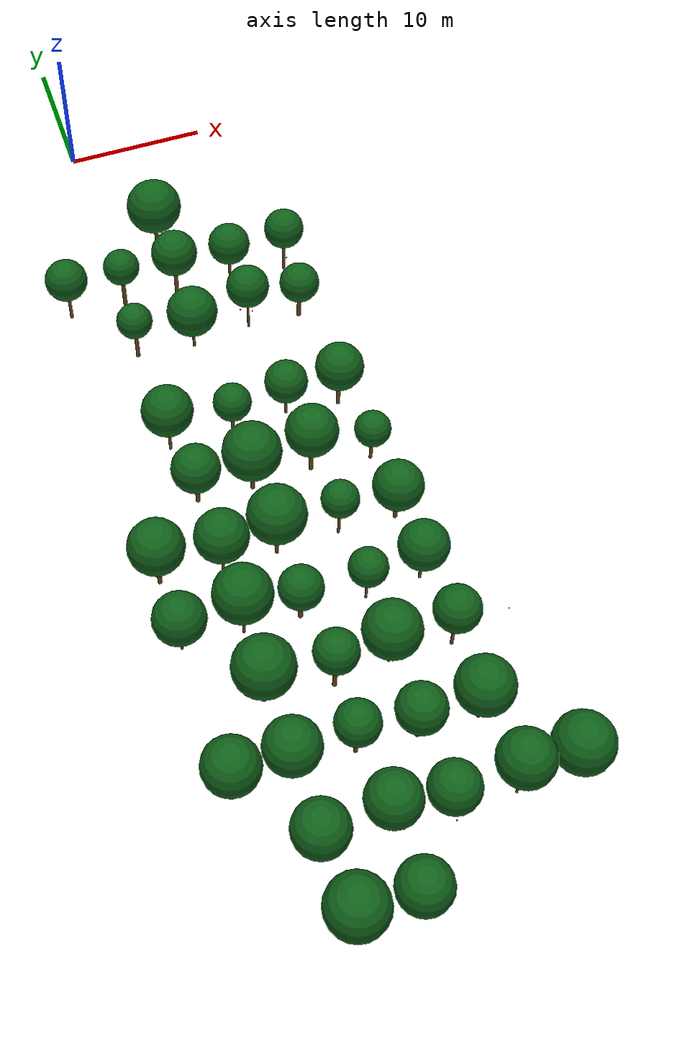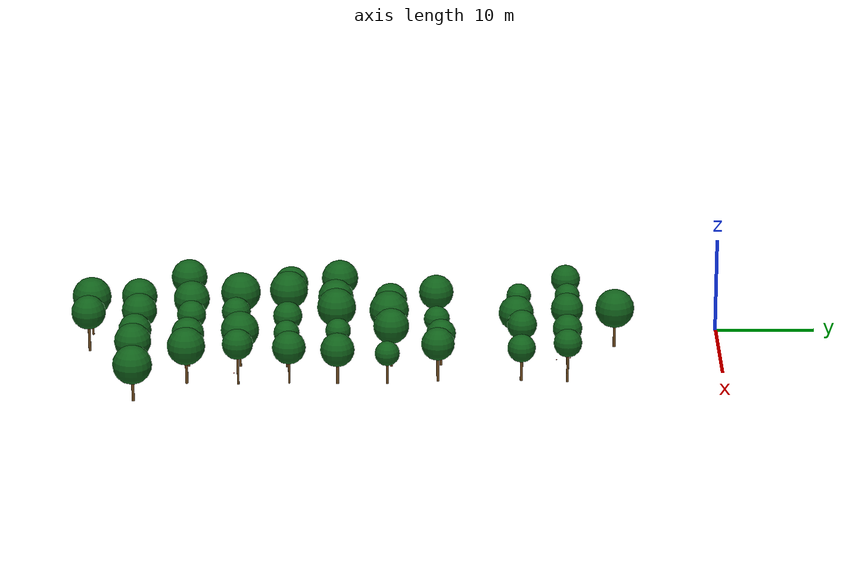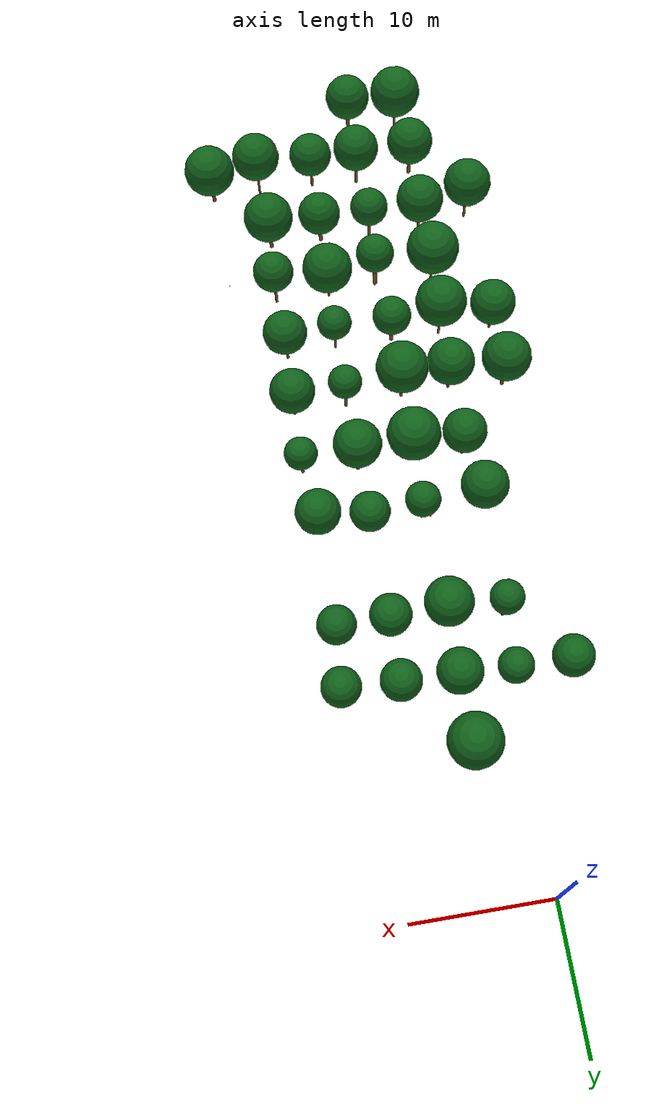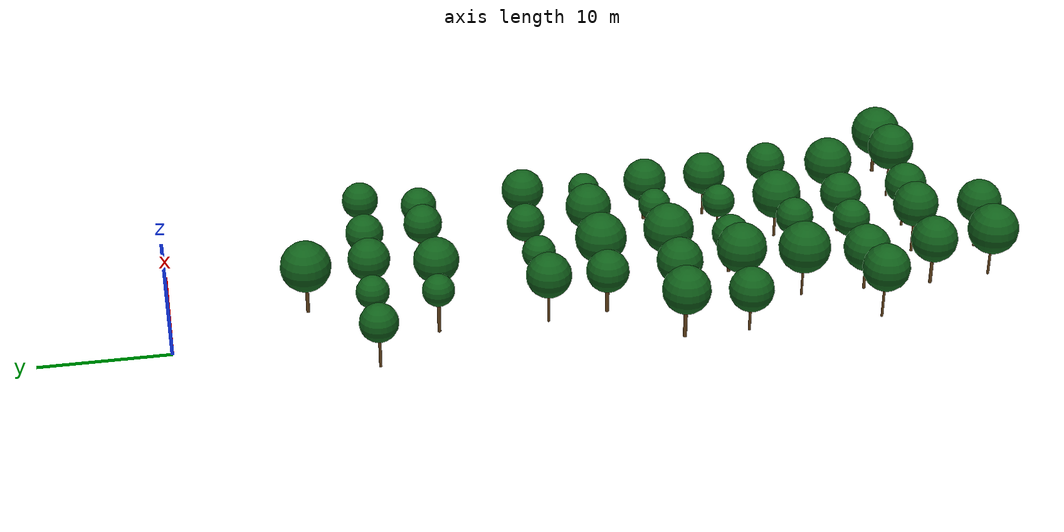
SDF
<sdf version="1.9">
 <world name="cheongsong_orchard">
  <model name="apple_tree_571">
   <static>true</static>
   <pose>0.04 -63.09 0 0 0 0</pose>
   <link name="link">
    <collision name="trunk_col">
     <pose>0 0 1.14 0 0 0</pose>
     <geometry><cylinder><radius>0.101</radius><length>2.27</length></cylinder></geometry>
    </collision>
    <visual name="trunk_vis">
     <pose>0 0 1.14 0 0 0</pose>
     <geometry><cylinder><radius>0.101</radius><length>2.27</length></cylinder></geometry>
     <material><ambient>0.35 0.22 0.08 1</ambient><diffuse>0.45 0.30 0.12 1</diffuse></material>
    </visual>
    <collision name="canopy_col">
     <pose>0 0 4.23 0 0 0</pose>
     <geometry><sphere><radius>1.96</radius></sphere></geometry>
    </collision>
    <visual name="canopy_vis">
     <pose>0 0 4.23 0 0 0</pose>
     <geometry><sphere><radius>1.96</radius></sphere></geometry>
     <material><ambient>0.04 0.28 0.06 1</ambient><diffuse>0.06 0.38 0.10 1</diffuse></material>
    </visual>
   </link>
  </model>
  <model name="apple_tree_572">
   <static>true</static>
   <pose>3.88 -63.20 0 0 0 0</pose>
   <link name="link">
    <collision name="trunk_col">
     <pose>0 0 1.25 0 0 0</pose>
     <geometry><cylinder><radius>0.133</radius><length>2.50</length></cylinder></geometry>
    </collision>
    <visual name="trunk_vis">
     <pose>0 0 1.25 0 0 0</pose>
     <geometry><cylinder><radius>0.133</radius><length>2.50</length></cylinder></geometry>
     <material><ambient>0.35 0.22 0.08 1</ambient><diffuse>0.45 0.30 0.12 1</diffuse></material>
    </visual>
    <collision name="canopy_col">
     <pose>0 0 4.22 0 0 0</pose>
     <geometry><sphere><radius>1.72</radius></sphere></geometry>
    </collision>
    <visual name="canopy_vis">
     <pose>0 0 4.22 0 0 0</pose>
     <geometry><sphere><radius>1.72</radius></sphere></geometry>
     <material><ambient>0.04 0.28 0.06 1</ambient><diffuse>0.06 0.38 0.10 1</diffuse></material>
    </visual>
   </link>
  </model>
  <model name="apple_tree_628">
   <static>true</static>
   <pose>-0.34 -58.31 0 0 0 0</pose>
   <link name="link">
    <collision name="trunk_col">
     <pose>0 0 1.14 0 0 0</pose>
     <geometry><cylinder><radius>0.129</radius><length>2.29</length></cylinder></geometry>
    </collision>
    <visual name="trunk_vis">
     <pose>0 0 1.14 0 0 0</pose>
     <geometry><cylinder><radius>0.129</radius><length>2.29</length></cylinder></geometry>
     <material><ambient>0.35 0.22 0.08 1</ambient><diffuse>0.45 0.30 0.12 1</diffuse></material>
    </visual>
    <collision name="canopy_col">
     <pose>0 0 4.07 0 0 0</pose>
     <geometry><sphere><radius>1.79</radius></sphere></geometry>
    </collision>
    <visual name="canopy_vis">
     <pose>0 0 4.07 0 0 0</pose>
     <geometry><sphere><radius>1.79</radius></sphere></geometry>
     <material><ambient>0.04 0.28 0.06 1</ambient><diffuse>0.06 0.38 0.10 1</diffuse></material>
    </visual>
   </link>
  </model>
  <model name="apple_tree_629">
   <static>true</static>
   <pose>4.02 -58.09 0 0 0 0</pose>
   <link name="link">
    <collision name="trunk_col">
     <pose>0 0 1.34 0 0 0</pose>
     <geometry><cylinder><radius>0.111</radius><length>2.68</length></cylinder></geometry>
    </collision>
    <visual name="trunk_vis">
     <pose>0 0 1.34 0 0 0</pose>
     <geometry><cylinder><radius>0.111</radius><length>2.68</length></cylinder></geometry>
     <material><ambient>0.35 0.22 0.08 1</ambient><diffuse>0.45 0.30 0.12 1</diffuse></material>
    </visual>
    <collision name="canopy_col">
     <pose>0 0 4.44 0 0 0</pose>
     <geometry><sphere><radius>1.76</radius></sphere></geometry>
    </collision>
    <visual name="canopy_vis">
     <pose>0 0 4.44 0 0 0</pose>
     <geometry><sphere><radius>1.76</radius></sphere></geometry>
     <material><ambient>0.04 0.28 0.06 1</ambient><diffuse>0.06 0.38 0.10 1</diffuse></material>
    </visual>
   </link>
  </model>
  <model name="apple_tree_630">
   <static>true</static>
   <pose>7.61 -58.36 0 0 0 0</pose>
   <link name="link">
    <collision name="trunk_col">
     <pose>0 0 1.17 0 0 0</pose>
     <geometry><cylinder><radius>0.104</radius><length>2.34</length></cylinder></geometry>
    </collision>
    <visual name="trunk_vis">
     <pose>0 0 1.17 0 0 0</pose>
     <geometry><cylinder><radius>0.104</radius><length>2.34</length></cylinder></geometry>
     <material><ambient>0.35 0.22 0.08 1</ambient><diffuse>0.45 0.30 0.12 1</diffuse></material>
    </visual>
    <collision name="canopy_col">
     <pose>0 0 3.98 0 0 0</pose>
     <geometry><sphere><radius>1.64</radius></sphere></geometry>
    </collision>
    <visual name="canopy_vis">
     <pose>0 0 3.98 0 0 0</pose>
     <geometry><sphere><radius>1.64</radius></sphere></geometry>
     <material><ambient>0.04 0.28 0.06 1</ambient><diffuse>0.06 0.38 0.10 1</diffuse></material>
    </visual>
   </link>
  </model>
  <model name="apple_tree_631">
   <static>true</static>
   <pose>11.90 -58.32 0 0 0 0</pose>
   <link name="link">
    <collision name="trunk_col">
     <pose>0 0 1.44 0 0 0</pose>
     <geometry><cylinder><radius>0.084</radius><length>2.89</length></cylinder></geometry>
    </collision>
    <visual name="trunk_vis">
     <pose>0 0 1.44 0 0 0</pose>
     <geometry><cylinder><radius>0.084</radius><length>2.89</length></cylinder></geometry>
     <material><ambient>0.35 0.22 0.08 1</ambient><diffuse>0.45 0.30 0.12 1</diffuse></material>
    </visual>
    <collision name="canopy_col">
     <pose>0 0 4.71 0 0 0</pose>
     <geometry><sphere><radius>1.82</radius></sphere></geometry>
    </collision>
    <visual name="canopy_vis">
     <pose>0 0 4.71 0 0 0</pose>
     <geometry><sphere><radius>1.82</radius></sphere></geometry>
     <material><ambient>0.04 0.28 0.06 1</ambient><diffuse>0.06 0.38 0.10 1</diffuse></material>
    </visual>
   </link>
  </model>
  <model name="apple_tree_632">
   <static>true</static>
   <pose>15.62 -58.19 0 0 0 0</pose>
   <link name="link">
    <collision name="trunk_col">
     <pose>0 0 0.98 0 0 0</pose>
     <geometry><cylinder><radius>0.140</radius><length>1.96</length></cylinder></geometry>
    </collision>
    <visual name="trunk_vis">
     <pose>0 0 0.98 0 0 0</pose>
     <geometry><cylinder><radius>0.140</radius><length>1.96</length></cylinder></geometry>
     <material><ambient>0.35 0.22 0.08 1</ambient><diffuse>0.45 0.30 0.12 1</diffuse></material>
    </visual>
    <collision name="canopy_col">
     <pose>0 0 3.91 0 0 0</pose>
     <geometry><sphere><radius>1.94</radius></sphere></geometry>
    </collision>
    <visual name="canopy_vis">
     <pose>0 0 3.91 0 0 0</pose>
     <geometry><sphere><radius>1.94</radius></sphere></geometry>
     <material><ambient>0.04 0.28 0.06 1</ambient><diffuse>0.06 0.38 0.10 1</diffuse></material>
    </visual>
   </link>
  </model>
  <model name="apple_tree_686">
   <static>true</static>
   <pose>-3.99 -53.42 0 0 0 0</pose>
   <link name="link">
    <collision name="trunk_col">
     <pose>0 0 1.35 0 0 0</pose>
     <geometry><cylinder><radius>0.097</radius><length>2.70</length></cylinder></geometry>
    </collision>
    <visual name="trunk_vis">
     <pose>0 0 1.35 0 0 0</pose>
     <geometry><cylinder><radius>0.097</radius><length>2.70</length></cylinder></geometry>
     <material><ambient>0.35 0.22 0.08 1</ambient><diffuse>0.45 0.30 0.12 1</diffuse></material>
    </visual>
    <collision name="canopy_col">
     <pose>0 0 4.52 0 0 0</pose>
     <geometry><sphere><radius>1.82</radius></sphere></geometry>
    </collision>
    <visual name="canopy_vis">
     <pose>0 0 4.52 0 0 0</pose>
     <geometry><sphere><radius>1.82</radius></sphere></geometry>
     <material><ambient>0.04 0.28 0.06 1</ambient><diffuse>0.06 0.38 0.10 1</diffuse></material>
    </visual>
   </link>
  </model>
  <model name="apple_tree_687">
   <static>true</static>
   <pose>-0.22 -53.05 0 0 0 0</pose>
   <link name="link">
    <collision name="trunk_col">
     <pose>0 0 0.99 0 0 0</pose>
     <geometry><cylinder><radius>0.112</radius><length>1.98</length></cylinder></geometry>
    </collision>
    <visual name="trunk_vis">
     <pose>0 0 0.99 0 0 0</pose>
     <geometry><cylinder><radius>0.112</radius><length>1.98</length></cylinder></geometry>
     <material><ambient>0.35 0.22 0.08 1</ambient><diffuse>0.45 0.30 0.12 1</diffuse></material>
    </visual>
    <collision name="canopy_col">
     <pose>0 0 3.80 0 0 0</pose>
     <geometry><sphere><radius>1.82</radius></sphere></geometry>
    </collision>
    <visual name="canopy_vis">
     <pose>0 0 3.80 0 0 0</pose>
     <geometry><sphere><radius>1.82</radius></sphere></geometry>
     <material><ambient>0.04 0.28 0.06 1</ambient><diffuse>0.06 0.38 0.10 1</diffuse></material>
    </visual>
   </link>
  </model>
  <model name="apple_tree_688">
   <static>true</static>
   <pose>3.82 -52.90 0 0 0 0</pose>
   <link name="link">
    <collision name="trunk_col">
     <pose>0 0 1.21 0 0 0</pose>
     <geometry><cylinder><radius>0.128</radius><length>2.41</length></cylinder></geometry>
    </collision>
    <visual name="trunk_vis">
     <pose>0 0 1.21 0 0 0</pose>
     <geometry><cylinder><radius>0.128</radius><length>2.41</length></cylinder></geometry>
     <material><ambient>0.35 0.22 0.08 1</ambient><diffuse>0.45 0.30 0.12 1</diffuse></material>
    </visual>
    <collision name="canopy_col">
     <pose>0 0 3.86 0 0 0</pose>
     <geometry><sphere><radius>1.45</radius></sphere></geometry>
    </collision>
    <visual name="canopy_vis">
     <pose>0 0 3.86 0 0 0</pose>
     <geometry><sphere><radius>1.45</radius></sphere></geometry>
     <material><ambient>0.04 0.28 0.06 1</ambient><diffuse>0.06 0.38 0.10 1</diffuse></material>
    </visual>
   </link>
  </model>
  <model name="apple_tree_689">
   <static>true</static>
   <pose>7.70 -53.11 0 0 0 0</pose>
   <link name="link">
    <collision name="trunk_col">
     <pose>0 0 1.00 0 0 0</pose>
     <geometry><cylinder><radius>0.146</radius><length>1.99</length></cylinder></geometry>
    </collision>
    <visual name="trunk_vis">
     <pose>0 0 1.00 0 0 0</pose>
     <geometry><cylinder><radius>0.146</radius><length>1.99</length></cylinder></geometry>
     <material><ambient>0.35 0.22 0.08 1</ambient><diffuse>0.45 0.30 0.12 1</diffuse></material>
    </visual>
    <collision name="canopy_col">
     <pose>0 0 3.61 0 0 0</pose>
     <geometry><sphere><radius>1.62</radius></sphere></geometry>
    </collision>
    <visual name="canopy_vis">
     <pose>0 0 3.61 0 0 0</pose>
     <geometry><sphere><radius>1.62</radius></sphere></geometry>
     <material><ambient>0.04 0.28 0.06 1</ambient><diffuse>0.06 0.38 0.10 1</diffuse></material>
    </visual>
   </link>
  </model>
  <model name="apple_tree_690">
   <static>true</static>
   <pose>11.66 -53.11 0 0 0 0</pose>
   <link name="link">
    <collision name="trunk_col">
     <pose>0 0 1.07 0 0 0</pose>
     <geometry><cylinder><radius>0.142</radius><length>2.14</length></cylinder></geometry>
    </collision>
    <visual name="trunk_vis">
     <pose>0 0 1.07 0 0 0</pose>
     <geometry><cylinder><radius>0.142</radius><length>2.14</length></cylinder></geometry>
     <material><ambient>0.35 0.22 0.08 1</ambient><diffuse>0.45 0.30 0.12 1</diffuse></material>
    </visual>
    <collision name="canopy_col">
     <pose>0 0 4.03 0 0 0</pose>
     <geometry><sphere><radius>1.89</radius></sphere></geometry>
    </collision>
    <visual name="canopy_vis">
     <pose>0 0 4.03 0 0 0</pose>
     <geometry><sphere><radius>1.89</radius></sphere></geometry>
     <material><ambient>0.04 0.28 0.06 1</ambient><diffuse>0.06 0.38 0.10 1</diffuse></material>
    </visual>
   </link>
  </model>
  <model name="apple_tree_746">
   <static>true</static>
   <pose>-0.30 -48.07 0 0 0 0</pose>
   <link name="link">
    <collision name="trunk_col">
     <pose>0 0 1.23 0 0 0</pose>
     <geometry><cylinder><radius>0.089</radius><length>2.46</length></cylinder></geometry>
    </collision>
    <visual name="trunk_vis">
     <pose>0 0 1.23 0 0 0</pose>
     <geometry><cylinder><radius>0.089</radius><length>2.46</length></cylinder></geometry>
     <material><ambient>0.35 0.22 0.08 1</ambient><diffuse>0.45 0.30 0.12 1</diffuse></material>
    </visual>
    <collision name="canopy_col">
     <pose>0 0 4.46 0 0 0</pose>
     <geometry><sphere><radius>2.00</radius></sphere></geometry>
    </collision>
    <visual name="canopy_vis">
     <pose>0 0 4.46 0 0 0</pose>
     <geometry><sphere><radius>2.00</radius></sphere></geometry>
     <material><ambient>0.04 0.28 0.06 1</ambient><diffuse>0.06 0.38 0.10 1</diffuse></material>
    </visual>
   </link>
  </model>
  <model name="apple_tree_747">
   <static>true</static>
   <pose>4.10 -48.40 0 0 0 0</pose>
   <link name="link">
    <collision name="trunk_col">
     <pose>0 0 1.43 0 0 0</pose>
     <geometry><cylinder><radius>0.144</radius><length>2.86</length></cylinder></geometry>
    </collision>
    <visual name="trunk_vis">
     <pose>0 0 1.43 0 0 0</pose>
     <geometry><cylinder><radius>0.144</radius><length>2.86</length></cylinder></geometry>
     <material><ambient>0.35 0.22 0.08 1</ambient><diffuse>0.45 0.30 0.12 1</diffuse></material>
    </visual>
    <collision name="canopy_col">
     <pose>0 0 4.31 0 0 0</pose>
     <geometry><sphere><radius>1.45</radius></sphere></geometry>
    </collision>
    <visual name="canopy_vis">
     <pose>0 0 4.31 0 0 0</pose>
     <geometry><sphere><radius>1.45</radius></sphere></geometry>
     <material><ambient>0.04 0.28 0.06 1</ambient><diffuse>0.06 0.38 0.10 1</diffuse></material>
    </visual>
   </link>
  </model>
  <model name="apple_tree_748">
   <static>true</static>
   <pose>7.84 -47.92 0 0 0 0</pose>
   <link name="link">
    <collision name="trunk_col">
     <pose>0 0 1.03 0 0 0</pose>
     <geometry><cylinder><radius>0.102</radius><length>2.07</length></cylinder></geometry>
    </collision>
    <visual name="trunk_vis">
     <pose>0 0 1.03 0 0 0</pose>
     <geometry><cylinder><radius>0.102</radius><length>2.07</length></cylinder></geometry>
     <material><ambient>0.35 0.22 0.08 1</ambient><diffuse>0.45 0.30 0.12 1</diffuse></material>
    </visual>
    <collision name="canopy_col">
     <pose>0 0 3.97 0 0 0</pose>
     <geometry><sphere><radius>1.90</radius></sphere></geometry>
    </collision>
    <visual name="canopy_vis">
     <pose>0 0 3.97 0 0 0</pose>
     <geometry><sphere><radius>1.90</radius></sphere></geometry>
     <material><ambient>0.04 0.28 0.06 1</ambient><diffuse>0.06 0.38 0.10 1</diffuse></material>
    </visual>
   </link>
  </model>
  <model name="apple_tree_749">
   <static>true</static>
   <pose>11.95 -48.03 0 0 0 0</pose>
   <link name="link">
    <collision name="trunk_col">
     <pose>0 0 1.40 0 0 0</pose>
     <geometry><cylinder><radius>0.109</radius><length>2.81</length></cylinder></geometry>
    </collision>
    <visual name="trunk_vis">
     <pose>0 0 1.40 0 0 0</pose>
     <geometry><cylinder><radius>0.109</radius><length>2.81</length></cylinder></geometry>
     <material><ambient>0.35 0.22 0.08 1</ambient><diffuse>0.45 0.30 0.12 1</diffuse></material>
    </visual>
    <collision name="canopy_col">
     <pose>0 0 4.34 0 0 0</pose>
     <geometry><sphere><radius>1.53</radius></sphere></geometry>
    </collision>
    <visual name="canopy_vis">
     <pose>0 0 4.34 0 0 0</pose>
     <geometry><sphere><radius>1.53</radius></sphere></geometry>
     <material><ambient>0.04 0.28 0.06 1</ambient><diffuse>0.06 0.38 0.10 1</diffuse></material>
    </visual>
   </link>
  </model>
  <model name="apple_tree_804">
   <static>true</static>
   <pose>-4.01 -43.07 0 0 0 0</pose>
   <link name="link">
    <collision name="trunk_col">
     <pose>0 0 1.02 0 0 0</pose>
     <geometry><cylinder><radius>0.102</radius><length>2.04</length></cylinder></geometry>
    </collision>
    <visual name="trunk_vis">
     <pose>0 0 1.02 0 0 0</pose>
     <geometry><cylinder><radius>0.102</radius><length>2.04</length></cylinder></geometry>
     <material><ambient>0.35 0.22 0.08 1</ambient><diffuse>0.45 0.30 0.12 1</diffuse></material>
    </visual>
    <collision name="canopy_col">
     <pose>0 0 3.76 0 0 0</pose>
     <geometry><sphere><radius>1.72</radius></sphere></geometry>
    </collision>
    <visual name="canopy_vis">
     <pose>0 0 3.76 0 0 0</pose>
     <geometry><sphere><radius>1.72</radius></sphere></geometry>
     <material><ambient>0.04 0.28 0.06 1</ambient><diffuse>0.06 0.38 0.10 1</diffuse></material>
    </visual>
   </link>
  </model>
  <model name="apple_tree_805">
   <static>true</static>
   <pose>-0.03 -43.21 0 0 0 0</pose>
   <link name="link">
    <collision name="trunk_col">
     <pose>0 0 1.44 0 0 0</pose>
     <geometry><cylinder><radius>0.090</radius><length>2.87</length></cylinder></geometry>
    </collision>
    <visual name="trunk_vis">
     <pose>0 0 1.44 0 0 0</pose>
     <geometry><cylinder><radius>0.090</radius><length>2.87</length></cylinder></geometry>
     <material><ambient>0.35 0.22 0.08 1</ambient><diffuse>0.45 0.30 0.12 1</diffuse></material>
    </visual>
    <collision name="canopy_col">
     <pose>0 0 4.79 0 0 0</pose>
     <geometry><sphere><radius>1.92</radius></sphere></geometry>
    </collision>
    <visual name="canopy_vis">
     <pose>0 0 4.79 0 0 0</pose>
     <geometry><sphere><radius>1.92</radius></sphere></geometry>
     <material><ambient>0.04 0.28 0.06 1</ambient><diffuse>0.06 0.38 0.10 1</diffuse></material>
    </visual>
   </link>
  </model>
  <model name="apple_tree_806">
   <static>true</static>
   <pose>3.67 -43.27 0 0 0 0</pose>
   <link name="link">
    <collision name="trunk_col">
     <pose>0 0 1.06 0 0 0</pose>
     <geometry><cylinder><radius>0.144</radius><length>2.13</length></cylinder></geometry>
    </collision>
    <visual name="trunk_vis">
     <pose>0 0 1.06 0 0 0</pose>
     <geometry><cylinder><radius>0.144</radius><length>2.13</length></cylinder></geometry>
     <material><ambient>0.35 0.22 0.08 1</ambient><diffuse>0.45 0.30 0.12 1</diffuse></material>
    </visual>
    <collision name="canopy_col">
     <pose>0 0 3.59 0 0 0</pose>
     <geometry><sphere><radius>1.46</radius></sphere></geometry>
    </collision>
    <visual name="canopy_vis">
     <pose>0 0 3.59 0 0 0</pose>
     <geometry><sphere><radius>1.46</radius></sphere></geometry>
     <material><ambient>0.04 0.28 0.06 1</ambient><diffuse>0.06 0.38 0.10 1</diffuse></material>
    </visual>
   </link>
  </model>
  <model name="apple_tree_807">
   <static>true</static>
   <pose>8.03 -43.29 0 0 0 0</pose>
   <link name="link">
    <collision name="trunk_col">
     <pose>0 0 1.21 0 0 0</pose>
     <geometry><cylinder><radius>0.085</radius><length>2.43</length></cylinder></geometry>
    </collision>
    <visual name="trunk_vis">
     <pose>0 0 1.21 0 0 0</pose>
     <geometry><cylinder><radius>0.085</radius><length>2.43</length></cylinder></geometry>
     <material><ambient>0.35 0.22 0.08 1</ambient><diffuse>0.45 0.30 0.12 1</diffuse></material>
    </visual>
    <collision name="canopy_col">
     <pose>0 0 3.72 0 0 0</pose>
     <geometry><sphere><radius>1.29</radius></sphere></geometry>
    </collision>
    <visual name="canopy_vis">
     <pose>0 0 3.72 0 0 0</pose>
     <geometry><sphere><radius>1.29</radius></sphere></geometry>
     <material><ambient>0.04 0.28 0.06 1</ambient><diffuse>0.06 0.38 0.10 1</diffuse></material>
    </visual>
   </link>
  </model>
  <model name="apple_tree_808">
   <static>true</static>
   <pose>11.80 -42.98 0 0 0 0</pose>
   <link name="link">
    <collision name="trunk_col">
     <pose>0 0 1.11 0 0 0</pose>
     <geometry><cylinder><radius>0.104</radius><length>2.23</length></cylinder></geometry>
    </collision>
    <visual name="trunk_vis">
     <pose>0 0 1.11 0 0 0</pose>
     <geometry><cylinder><radius>0.104</radius><length>2.23</length></cylinder></geometry>
     <material><ambient>0.35 0.22 0.08 1</ambient><diffuse>0.45 0.30 0.12 1</diffuse></material>
    </visual>
    <collision name="canopy_col">
     <pose>0 0 3.88 0 0 0</pose>
     <geometry><sphere><radius>1.66</radius></sphere></geometry>
    </collision>
    <visual name="canopy_vis">
     <pose>0 0 3.88 0 0 0</pose>
     <geometry><sphere><radius>1.66</radius></sphere></geometry>
     <material><ambient>0.04 0.28 0.06 1</ambient><diffuse>0.06 0.38 0.10 1</diffuse></material>
    </visual>
   </link>
  </model>
  <model name="apple_tree_863">
   <static>true</static>
   <pose>-4.01 -38.10 0 0 0 0</pose>
   <link name="link">
    <collision name="trunk_col">
     <pose>0 0 1.22 0 0 0</pose>
     <geometry><cylinder><radius>0.148</radius><length>2.44</length></cylinder></geometry>
    </collision>
    <visual name="trunk_vis">
     <pose>0 0 1.22 0 0 0</pose>
     <geometry><cylinder><radius>0.148</radius><length>2.44</length></cylinder></geometry>
     <material><ambient>0.35 0.22 0.08 1</ambient><diffuse>0.45 0.30 0.12 1</diffuse></material>
    </visual>
    <collision name="canopy_col">
     <pose>0 0 4.29 0 0 0</pose>
     <geometry><sphere><radius>1.85</radius></sphere></geometry>
    </collision>
    <visual name="canopy_vis">
     <pose>0 0 4.29 0 0 0</pose>
     <geometry><sphere><radius>1.85</radius></sphere></geometry>
     <material><ambient>0.04 0.28 0.06 1</ambient><diffuse>0.06 0.38 0.10 1</diffuse></material>
    </visual>
   </link>
  </model>
  <model name="apple_tree_864">
   <static>true</static>
   <pose>0.09 -38.48 0 0 0 0</pose>
   <link name="link">
    <collision name="trunk_col">
     <pose>0 0 1.14 0 0 0</pose>
     <geometry><cylinder><radius>0.104</radius><length>2.28</length></cylinder></geometry>
    </collision>
    <visual name="trunk_vis">
     <pose>0 0 1.14 0 0 0</pose>
     <geometry><cylinder><radius>0.104</radius><length>2.28</length></cylinder></geometry>
     <material><ambient>0.35 0.22 0.08 1</ambient><diffuse>0.45 0.30 0.12 1</diffuse></material>
    </visual>
    <collision name="canopy_col">
     <pose>0 0 4.06 0 0 0</pose>
     <geometry><sphere><radius>1.78</radius></sphere></geometry>
    </collision>
    <visual name="canopy_vis">
     <pose>0 0 4.06 0 0 0</pose>
     <geometry><sphere><radius>1.78</radius></sphere></geometry>
     <material><ambient>0.04 0.28 0.06 1</ambient><diffuse>0.06 0.38 0.10 1</diffuse></material>
    </visual>
   </link>
  </model>
  <model name="apple_tree_865">
   <static>true</static>
   <pose>3.75 -38.36 0 0 0 0</pose>
   <link name="link">
    <collision name="trunk_col">
     <pose>0 0 1.29 0 0 0</pose>
     <geometry><cylinder><radius>0.117</radius><length>2.59</length></cylinder></geometry>
    </collision>
    <visual name="trunk_vis">
     <pose>0 0 1.29 0 0 0</pose>
     <geometry><cylinder><radius>0.117</radius><length>2.59</length></cylinder></geometry>
     <material><ambient>0.35 0.22 0.08 1</ambient><diffuse>0.45 0.30 0.12 1</diffuse></material>
    </visual>
    <collision name="canopy_col">
     <pose>0 0 4.54 0 0 0</pose>
     <geometry><sphere><radius>1.95</radius></sphere></geometry>
    </collision>
    <visual name="canopy_vis">
     <pose>0 0 4.54 0 0 0</pose>
     <geometry><sphere><radius>1.95</radius></sphere></geometry>
     <material><ambient>0.04 0.28 0.06 1</ambient><diffuse>0.06 0.38 0.10 1</diffuse></material>
    </visual>
   </link>
  </model>
  <model name="apple_tree_866">
   <static>true</static>
   <pose>8.03 -38.17 0 0 0 0</pose>
   <link name="link">
    <collision name="trunk_col">
     <pose>0 0 1.34 0 0 0</pose>
     <geometry><cylinder><radius>0.096</radius><length>2.67</length></cylinder></geometry>
    </collision>
    <visual name="trunk_vis">
     <pose>0 0 1.34 0 0 0</pose>
     <geometry><cylinder><radius>0.096</radius><length>2.67</length></cylinder></geometry>
     <material><ambient>0.35 0.22 0.08 1</ambient><diffuse>0.45 0.30 0.12 1</diffuse></material>
    </visual>
    <collision name="canopy_col">
     <pose>0 0 3.93 0 0 0</pose>
     <geometry><sphere><radius>1.26</radius></sphere></geometry>
    </collision>
    <visual name="canopy_vis">
     <pose>0 0 3.93 0 0 0</pose>
     <geometry><sphere><radius>1.26</radius></sphere></geometry>
     <material><ambient>0.04 0.28 0.06 1</ambient><diffuse>0.06 0.38 0.10 1</diffuse></material>
    </visual>
   </link>
  </model>
  <model name="apple_tree_867">
   <static>true</static>
   <pose>11.95 -38.20 0 0 0 0</pose>
   <link name="link">
    <collision name="trunk_col">
     <pose>0 0 0.98 0 0 0</pose>
     <geometry><cylinder><radius>0.144</radius><length>1.97</length></cylinder></geometry>
    </collision>
    <visual name="trunk_vis">
     <pose>0 0 0.98 0 0 0</pose>
     <geometry><cylinder><radius>0.144</radius><length>1.97</length></cylinder></geometry>
     <material><ambient>0.35 0.22 0.08 1</ambient><diffuse>0.45 0.30 0.12 1</diffuse></material>
    </visual>
    <collision name="canopy_col">
     <pose>0 0 3.66 0 0 0</pose>
     <geometry><sphere><radius>1.69</radius></sphere></geometry>
    </collision>
    <visual name="canopy_vis">
     <pose>0 0 3.66 0 0 0</pose>
     <geometry><sphere><radius>1.69</radius></sphere></geometry>
     <material><ambient>0.04 0.28 0.06 1</ambient><diffuse>0.06 0.38 0.10 1</diffuse></material>
    </visual>
   </link>
  </model>
  <model name="apple_tree_916">
   <static>true</static>
   <pose>0.08 -32.93 0 0 0 0</pose>
   <link name="link">
    <collision name="trunk_col">
     <pose>0 0 1.05 0 0 0</pose>
     <geometry><cylinder><radius>0.148</radius><length>2.10</length></cylinder></geometry>
    </collision>
    <visual name="trunk_vis">
     <pose>0 0 1.05 0 0 0</pose>
     <geometry><cylinder><radius>0.148</radius><length>2.10</length></cylinder></geometry>
     <material><ambient>0.35 0.22 0.08 1</ambient><diffuse>0.45 0.30 0.12 1</diffuse></material>
    </visual>
    <collision name="canopy_col">
     <pose>0 0 3.74 0 0 0</pose>
     <geometry><sphere><radius>1.64</radius></sphere></geometry>
    </collision>
    <visual name="canopy_vis">
     <pose>0 0 3.74 0 0 0</pose>
     <geometry><sphere><radius>1.64</radius></sphere></geometry>
     <material><ambient>0.04 0.28 0.06 1</ambient><diffuse>0.06 0.38 0.10 1</diffuse></material>
    </visual>
   </link>
  </model>
  <model name="apple_tree_917">
   <static>true</static>
   <pose>3.81 -33.10 0 0 0 0</pose>
   <link name="link">
    <collision name="trunk_col">
     <pose>0 0 1.12 0 0 0</pose>
     <geometry><cylinder><radius>0.143</radius><length>2.24</length></cylinder></geometry>
    </collision>
    <visual name="trunk_vis">
     <pose>0 0 1.12 0 0 0</pose>
     <geometry><cylinder><radius>0.143</radius><length>2.24</length></cylinder></geometry>
     <material><ambient>0.35 0.22 0.08 1</ambient><diffuse>0.45 0.30 0.12 1</diffuse></material>
    </visual>
    <collision name="canopy_col">
     <pose>0 0 4.21 0 0 0</pose>
     <geometry><sphere><radius>1.98</radius></sphere></geometry>
    </collision>
    <visual name="canopy_vis">
     <pose>0 0 4.21 0 0 0</pose>
     <geometry><sphere><radius>1.98</radius></sphere></geometry>
     <material><ambient>0.04 0.28 0.06 1</ambient><diffuse>0.06 0.38 0.10 1</diffuse></material>
    </visual>
   </link>
  </model>
  <model name="apple_tree_918">
   <static>true</static>
   <pose>7.96 -32.89 0 0 0 0</pose>
   <link name="link">
    <collision name="trunk_col">
     <pose>0 0 1.30 0 0 0</pose>
     <geometry><cylinder><radius>0.136</radius><length>2.60</length></cylinder></geometry>
    </collision>
    <visual name="trunk_vis">
     <pose>0 0 1.30 0 0 0</pose>
     <geometry><cylinder><radius>0.136</radius><length>2.60</length></cylinder></geometry>
     <material><ambient>0.35 0.22 0.08 1</ambient><diffuse>0.45 0.30 0.12 1</diffuse></material>
    </visual>
    <collision name="canopy_col">
     <pose>0 0 4.38 0 0 0</pose>
     <geometry><sphere><radius>1.78</radius></sphere></geometry>
    </collision>
    <visual name="canopy_vis">
     <pose>0 0 4.38 0 0 0</pose>
     <geometry><sphere><radius>1.78</radius></sphere></geometry>
     <material><ambient>0.04 0.28 0.06 1</ambient><diffuse>0.06 0.38 0.10 1</diffuse></material>
    </visual>
   </link>
  </model>
  <model name="apple_tree_919">
   <static>true</static>
   <pose>12.06 -33.29 0 0 0 0</pose>
   <link name="link">
    <collision name="trunk_col">
     <pose>0 0 1.03 0 0 0</pose>
     <geometry><cylinder><radius>0.114</radius><length>2.06</length></cylinder></geometry>
    </collision>
    <visual name="trunk_vis">
     <pose>0 0 1.03 0 0 0</pose>
     <geometry><cylinder><radius>0.114</radius><length>2.06</length></cylinder></geometry>
     <material><ambient>0.35 0.22 0.08 1</ambient><diffuse>0.45 0.30 0.12 1</diffuse></material>
    </visual>
    <collision name="canopy_col">
     <pose>0 0 3.29 0 0 0</pose>
     <geometry><sphere><radius>1.23</radius></sphere></geometry>
    </collision>
    <visual name="canopy_vis">
     <pose>0 0 3.29 0 0 0</pose>
     <geometry><sphere><radius>1.23</radius></sphere></geometry>
     <material><ambient>0.04 0.28 0.06 1</ambient><diffuse>0.06 0.38 0.10 1</diffuse></material>
    </visual>
   </link>
  </model>
  <model name="apple_tree_969">
   <static>true</static>
   <pose>-0.46 -28.33 0 0 0 0</pose>
   <link name="link">
    <collision name="trunk_col">
     <pose>0 0 1.26 0 0 0</pose>
     <geometry><cylinder><radius>0.106</radius><length>2.53</length></cylinder></geometry>
    </collision>
    <visual name="trunk_vis">
     <pose>0 0 1.26 0 0 0</pose>
     <geometry><cylinder><radius>0.106</radius><length>2.53</length></cylinder></geometry>
     <material><ambient>0.35 0.22 0.08 1</ambient><diffuse>0.45 0.30 0.12 1</diffuse></material>
    </visual>
    <collision name="canopy_col">
     <pose>0 0 4.27 0 0 0</pose>
     <geometry><sphere><radius>1.74</radius></sphere></geometry>
    </collision>
    <visual name="canopy_vis">
     <pose>0 0 4.27 0 0 0</pose>
     <geometry><sphere><radius>1.74</radius></sphere></geometry>
     <material><ambient>0.04 0.28 0.06 1</ambient><diffuse>0.06 0.38 0.10 1</diffuse></material>
    </visual>
   </link>
  </model>
  <model name="apple_tree_970">
   <static>true</static>
   <pose>3.97 -28.32 0 0 0 0</pose>
   <link name="link">
    <collision name="trunk_col">
     <pose>0 0 1.00 0 0 0</pose>
     <geometry><cylinder><radius>0.121</radius><length>2.01</length></cylinder></geometry>
    </collision>
    <visual name="trunk_vis">
     <pose>0 0 1.00 0 0 0</pose>
     <geometry><cylinder><radius>0.121</radius><length>2.01</length></cylinder></geometry>
     <material><ambient>0.35 0.22 0.08 1</ambient><diffuse>0.45 0.30 0.12 1</diffuse></material>
    </visual>
    <collision name="canopy_col">
     <pose>0 0 3.31 0 0 0</pose>
     <geometry><sphere><radius>1.30</radius></sphere></geometry>
    </collision>
    <visual name="canopy_vis">
     <pose>0 0 3.31 0 0 0</pose>
     <geometry><sphere><radius>1.30</radius></sphere></geometry>
     <material><ambient>0.04 0.28 0.06 1</ambient><diffuse>0.06 0.38 0.10 1</diffuse></material>
    </visual>
   </link>
  </model>
  <model name="apple_tree_971">
   <static>true</static>
   <pose>7.87 -27.94 0 0 0 0</pose>
   <link name="link">
    <collision name="trunk_col">
     <pose>0 0 1.01 0 0 0</pose>
     <geometry><cylinder><radius>0.101</radius><length>2.01</length></cylinder></geometry>
    </collision>
    <visual name="trunk_vis">
     <pose>0 0 1.01 0 0 0</pose>
     <geometry><cylinder><radius>0.101</radius><length>2.01</length></cylinder></geometry>
     <material><ambient>0.35 0.22 0.08 1</ambient><diffuse>0.45 0.30 0.12 1</diffuse></material>
    </visual>
    <collision name="canopy_col">
     <pose>0 0 3.48 0 0 0</pose>
     <geometry><sphere><radius>1.47</radius></sphere></geometry>
    </collision>
    <visual name="canopy_vis">
     <pose>0 0 3.48 0 0 0</pose>
     <geometry><sphere><radius>1.47</radius></sphere></geometry>
     <material><ambient>0.04 0.28 0.06 1</ambient><diffuse>0.06 0.38 0.10 1</diffuse></material>
    </visual>
   </link>
  </model>
  <model name="apple_tree_972">
   <static>true</static>
   <pose>11.52 -28.29 0 0 0 0</pose>
   <link name="link">
    <collision name="trunk_col">
     <pose>0 0 1.20 0 0 0</pose>
     <geometry><cylinder><radius>0.140</radius><length>2.40</length></cylinder></geometry>
    </collision>
    <visual name="trunk_vis">
     <pose>0 0 1.20 0 0 0</pose>
     <geometry><cylinder><radius>0.140</radius><length>2.40</length></cylinder></geometry>
     <material><ambient>0.35 0.22 0.08 1</ambient><diffuse>0.45 0.30 0.12 1</diffuse></material>
    </visual>
    <collision name="canopy_col">
     <pose>0 0 4.05 0 0 0</pose>
     <geometry><sphere><radius>1.65</radius></sphere></geometry>
    </collision>
    <visual name="canopy_vis">
     <pose>0 0 4.05 0 0 0</pose>
     <geometry><sphere><radius>1.65</radius></sphere></geometry>
     <material><ambient>0.04 0.28 0.06 1</ambient><diffuse>0.06 0.38 0.10 1</diffuse></material>
    </visual>
   </link>
  </model>
  <model name="apple_tree_1028">
   <static>true</static>
   <pose>-0.40 -19.98 0 0 0 0</pose>
   <link name="link">
    <collision name="trunk_col">
     <pose>0 0 1.30 0 0 0</pose>
     <geometry><cylinder><radius>0.136</radius><length>2.59</length></cylinder></geometry>
    </collision>
    <visual name="trunk_vis">
     <pose>0 0 1.30 0 0 0</pose>
     <geometry><cylinder><radius>0.136</radius><length>2.59</length></cylinder></geometry>
     <material><ambient>0.35 0.22 0.08 1</ambient><diffuse>0.45 0.30 0.12 1</diffuse></material>
    </visual>
    <collision name="canopy_col">
     <pose>0 0 3.83 0 0 0</pose>
     <geometry><sphere><radius>1.24</radius></sphere></geometry>
    </collision>
    <visual name="canopy_vis">
     <pose>0 0 3.83 0 0 0</pose>
     <geometry><sphere><radius>1.24</radius></sphere></geometry>
     <material><ambient>0.04 0.28 0.06 1</ambient><diffuse>0.06 0.38 0.10 1</diffuse></material>
    </visual>
   </link>
  </model>
  <model name="apple_tree_1029">
   <static>true</static>
   <pose>3.60 -20.35 0 0 0 0</pose>
   <link name="link">
    <collision name="trunk_col">
     <pose>0 0 0.99 0 0 0</pose>
     <geometry><cylinder><radius>0.098</radius><length>1.98</length></cylinder></geometry>
    </collision>
    <visual name="trunk_vis">
     <pose>0 0 0.99 0 0 0</pose>
     <geometry><cylinder><radius>0.098</radius><length>1.98</length></cylinder></geometry>
     <material><ambient>0.35 0.22 0.08 1</ambient><diffuse>0.45 0.30 0.12 1</diffuse></material>
    </visual>
    <collision name="canopy_col">
     <pose>0 0 3.75 0 0 0</pose>
     <geometry><sphere><radius>1.76</radius></sphere></geometry>
    </collision>
    <visual name="canopy_vis">
     <pose>0 0 3.75 0 0 0</pose>
     <geometry><sphere><radius>1.76</radius></sphere></geometry>
     <material><ambient>0.04 0.28 0.06 1</ambient><diffuse>0.06 0.38 0.10 1</diffuse></material>
    </visual>
   </link>
  </model>
  <model name="apple_tree_1030">
   <static>true</static>
   <pose>7.77 -19.89 0 0 0 0</pose>
   <link name="link">
    <collision name="trunk_col">
     <pose>0 0 1.43 0 0 0</pose>
     <geometry><cylinder><radius>0.083</radius><length>2.85</length></cylinder></geometry>
    </collision>
    <visual name="trunk_vis">
     <pose>0 0 1.43 0 0 0</pose>
     <geometry><cylinder><radius>0.083</radius><length>2.85</length></cylinder></geometry>
     <material><ambient>0.35 0.22 0.08 1</ambient><diffuse>0.45 0.30 0.12 1</diffuse></material>
    </visual>
    <collision name="canopy_col">
     <pose>0 0 4.34 0 0 0</pose>
     <geometry><sphere><radius>1.49</radius></sphere></geometry>
    </collision>
    <visual name="canopy_vis">
     <pose>0 0 4.34 0 0 0</pose>
     <geometry><sphere><radius>1.49</radius></sphere></geometry>
     <material><ambient>0.04 0.28 0.06 1</ambient><diffuse>0.06 0.38 0.10 1</diffuse></material>
    </visual>
   </link>
  </model>
  <model name="apple_tree_1031">
   <static>true</static>
   <pose>11.51 -20.03 0 0 0 0</pose>
   <link name="link">
    <collision name="trunk_col">
     <pose>0 0 1.06 0 0 0</pose>
     <geometry><cylinder><radius>0.144</radius><length>2.13</length></cylinder></geometry>
    </collision>
    <visual name="trunk_vis">
     <pose>0 0 1.06 0 0 0</pose>
     <geometry><cylinder><radius>0.144</radius><length>2.13</length></cylinder></geometry>
     <material><ambient>0.35 0.22 0.08 1</ambient><diffuse>0.45 0.30 0.12 1</diffuse></material>
    </visual>
    <collision name="canopy_col">
     <pose>0 0 3.52 0 0 0</pose>
     <geometry><sphere><radius>1.40</radius></sphere></geometry>
    </collision>
    <visual name="canopy_vis">
     <pose>0 0 3.52 0 0 0</pose>
     <geometry><sphere><radius>1.40</radius></sphere></geometry>
     <material><ambient>0.04 0.28 0.06 1</ambient><diffuse>0.06 0.38 0.10 1</diffuse></material>
    </visual>
   </link>
  </model>
  <model name="apple_tree_1086">
   <static>true</static>
   <pose>-3.96 -15.11 0 0 0 0</pose>
   <link name="link">
    <collision name="trunk_col">
     <pose>0 0 1.28 0 0 0</pose>
     <geometry><cylinder><radius>0.111</radius><length>2.55</length></cylinder></geometry>
    </collision>
    <visual name="trunk_vis">
     <pose>0 0 1.28 0 0 0</pose>
     <geometry><cylinder><radius>0.111</radius><length>2.55</length></cylinder></geometry>
     <material><ambient>0.35 0.22 0.08 1</ambient><diffuse>0.45 0.30 0.12 1</diffuse></material>
    </visual>
    <collision name="canopy_col">
     <pose>0 0 4.03 0 0 0</pose>
     <geometry><sphere><radius>1.48</radius></sphere></geometry>
    </collision>
    <visual name="canopy_vis">
     <pose>0 0 4.03 0 0 0</pose>
     <geometry><sphere><radius>1.48</radius></sphere></geometry>
     <material><ambient>0.04 0.28 0.06 1</ambient><diffuse>0.06 0.38 0.10 1</diffuse></material>
    </visual>
   </link>
  </model>
  <model name="apple_tree_1087">
   <static>true</static>
   <pose>-0.00 -15.10 0 0 0 0</pose>
   <link name="link">
    <collision name="trunk_col">
     <pose>0 0 1.35 0 0 0</pose>
     <geometry><cylinder><radius>0.142</radius><length>2.71</length></cylinder></geometry>
    </collision>
    <visual name="trunk_vis">
     <pose>0 0 1.35 0 0 0</pose>
     <geometry><cylinder><radius>0.142</radius><length>2.71</length></cylinder></geometry>
     <material><ambient>0.35 0.22 0.08 1</ambient><diffuse>0.45 0.30 0.12 1</diffuse></material>
    </visual>
    <collision name="canopy_col">
     <pose>0 0 3.97 0 0 0</pose>
     <geometry><sphere><radius>1.27</radius></sphere></geometry>
    </collision>
    <visual name="canopy_vis">
     <pose>0 0 3.97 0 0 0</pose>
     <geometry><sphere><radius>1.27</radius></sphere></geometry>
     <material><ambient>0.04 0.28 0.06 1</ambient><diffuse>0.06 0.38 0.10 1</diffuse></material>
    </visual>
   </link>
  </model>
  <model name="apple_tree_1088">
   <static>true</static>
   <pose>3.83 -15.26 0 0 0 0</pose>
   <link name="link">
    <collision name="trunk_col">
     <pose>0 0 1.33 0 0 0</pose>
     <geometry><cylinder><radius>0.142</radius><length>2.65</length></cylinder></geometry>
    </collision>
    <visual name="trunk_vis">
     <pose>0 0 1.33 0 0 0</pose>
     <geometry><cylinder><radius>0.142</radius><length>2.65</length></cylinder></geometry>
     <material><ambient>0.35 0.22 0.08 1</ambient><diffuse>0.45 0.30 0.12 1</diffuse></material>
    </visual>
    <collision name="canopy_col">
     <pose>0 0 4.27 0 0 0</pose>
     <geometry><sphere><radius>1.62</radius></sphere></geometry>
    </collision>
    <visual name="canopy_vis">
     <pose>0 0 4.27 0 0 0</pose>
     <geometry><sphere><radius>1.62</radius></sphere></geometry>
     <material><ambient>0.04 0.28 0.06 1</ambient><diffuse>0.06 0.38 0.10 1</diffuse></material>
    </visual>
   </link>
  </model>
  <model name="apple_tree_1089">
   <static>true</static>
   <pose>7.83 -15.36 0 0 0 0</pose>
   <link name="link">
    <collision name="trunk_col">
     <pose>0 0 1.22 0 0 0</pose>
     <geometry><cylinder><radius>0.102</radius><length>2.45</length></cylinder></geometry>
    </collision>
    <visual name="trunk_vis">
     <pose>0 0 1.22 0 0 0</pose>
     <geometry><cylinder><radius>0.102</radius><length>2.45</length></cylinder></geometry>
     <material><ambient>0.35 0.22 0.08 1</ambient><diffuse>0.45 0.30 0.12 1</diffuse></material>
    </visual>
    <collision name="canopy_col">
     <pose>0 0 3.92 0 0 0</pose>
     <geometry><sphere><radius>1.47</radius></sphere></geometry>
    </collision>
    <visual name="canopy_vis">
     <pose>0 0 3.92 0 0 0</pose>
     <geometry><sphere><radius>1.47</radius></sphere></geometry>
     <material><ambient>0.04 0.28 0.06 1</ambient><diffuse>0.06 0.38 0.10 1</diffuse></material>
    </visual>
   </link>
  </model>
  <model name="apple_tree_1090">
   <static>true</static>
   <pose>11.89 -15.48 0 0 0 0</pose>
   <link name="link">
    <collision name="trunk_col">
     <pose>0 0 1.41 0 0 0</pose>
     <geometry><cylinder><radius>0.118</radius><length>2.82</length></cylinder></geometry>
    </collision>
    <visual name="trunk_vis">
     <pose>0 0 1.41 0 0 0</pose>
     <geometry><cylinder><radius>0.118</radius><length>2.82</length></cylinder></geometry>
     <material><ambient>0.35 0.22 0.08 1</ambient><diffuse>0.45 0.30 0.12 1</diffuse></material>
    </visual>
    <collision name="canopy_col">
     <pose>0 0 4.23 0 0 0</pose>
     <geometry><sphere><radius>1.41</radius></sphere></geometry>
    </collision>
    <visual name="canopy_vis">
     <pose>0 0 4.23 0 0 0</pose>
     <geometry><sphere><radius>1.41</radius></sphere></geometry>
     <material><ambient>0.04 0.28 0.06 1</ambient><diffuse>0.06 0.38 0.10 1</diffuse></material>
    </visual>
   </link>
  </model>
  <model name="apple_tree_1145">
   <static>true</static>
   <pose>3.71 -10.46 0 0 0 0</pose>
   <link name="link">
    <collision name="trunk_col">
     <pose>0 0 1.14 0 0 0</pose>
     <geometry><cylinder><radius>0.136</radius><length>2.28</length></cylinder></geometry>
    </collision>
    <visual name="trunk_vis">
     <pose>0 0 1.14 0 0 0</pose>
     <geometry><cylinder><radius>0.136</radius><length>2.28</length></cylinder></geometry>
     <material><ambient>0.35 0.22 0.08 1</ambient><diffuse>0.45 0.30 0.12 1</diffuse></material>
    </visual>
    <collision name="canopy_col">
     <pose>0 0 4.23 0 0 0</pose>
     <geometry><sphere><radius>1.95</radius></sphere></geometry>
    </collision>
    <visual name="canopy_vis">
     <pose>0 0 4.23 0 0 0</pose>
     <geometry><sphere><radius>1.95</radius></sphere></geometry>
     <material><ambient>0.04 0.28 0.06 1</ambient><diffuse>0.06 0.38 0.10 1</diffuse></material>
    </visual>
   </link>
  </model>
  <model name="apple_630_0">
   <static>true</static>
   <pose>7.47 -58.68 2.13 0 0 0</pose>
   <link name="link">
    <visual name="visual">
     <geometry><sphere><radius>0.04</radius></sphere></geometry>
     <material><ambient>0.7 0.05 0.02 1</ambient><diffuse>0.9 0.10 0.05 1</diffuse></material>
    </visual>
   </link>
  </model>
  <model name="apple_630_1">
   <static>true</static>
   <pose>6.88 -59.20 2.63 0 0 0</pose>
   <link name="link">
    <visual name="visual">
     <geometry><sphere><radius>0.04</radius></sphere></geometry>
     <material><ambient>0.7 0.05 0.02 1</ambient><diffuse>0.9 0.10 0.05 1</diffuse></material>
    </visual>
   </link>
  </model>
  <model name="apple_630_2">
   <static>true</static>
   <pose>6.71 -58.20 1.79 0 0 0</pose>
   <link name="link">
    <visual name="visual">
     <geometry><sphere><radius>0.04</radius></sphere></geometry>
     <material><ambient>0.7 0.05 0.02 1</ambient><diffuse>0.9 0.10 0.05 1</diffuse></material>
    </visual>
   </link>
  </model>
  <model name="apple_630_3">
   <static>true</static>
   <pose>7.55 -57.69 2.38 0 0 0</pose>
   <link name="link">
    <visual name="visual">
     <geometry><sphere><radius>0.04</radius></sphere></geometry>
     <material><ambient>0.7 0.05 0.02 1</ambient><diffuse>0.9 0.10 0.05 1</diffuse></material>
    </visual>
   </link>
  </model>
  <model name="apple_630_4">
   <static>true</static>
   <pose>7.41 -59.59 2.14 0 0 0</pose>
   <link name="link">
    <visual name="visual">
     <geometry><sphere><radius>0.04</radius></sphere></geometry>
     <material><ambient>0.7 0.05 0.02 1</ambient><diffuse>0.9 0.10 0.05 1</diffuse></material>
    </visual>
   </link>
  </model>
  <model name="apple_690_0">
   <static>true</static>
   <pose>12.24 -53.20 1.96 0 0 0</pose>
   <link name="link">
    <visual name="visual">
     <geometry><sphere><radius>0.04</radius></sphere></geometry>
     <material><ambient>0.7 0.05 0.02 1</ambient><diffuse>0.9 0.10 0.05 1</diffuse></material>
    </visual>
   </link>
  </model>
  <model name="apple_690_1">
   <static>true</static>
   <pose>12.92 -52.99 2.16 0 0 0</pose>
   <link name="link">
    <visual name="visual">
     <geometry><sphere><radius>0.04</radius></sphere></geometry>
     <material><ambient>0.7 0.05 0.02 1</ambient><diffuse>0.9 0.10 0.05 1</diffuse></material>
    </visual>
   </link>
  </model>
  <model name="apple_690_2">
   <static>true</static>
   <pose>11.19 -52.74 2.67 0 0 0</pose>
   <link name="link">
    <visual name="visual">
     <geometry><sphere><radius>0.04</radius></sphere></geometry>
     <material><ambient>0.7 0.05 0.02 1</ambient><diffuse>0.9 0.10 0.05 1</diffuse></material>
    </visual>
   </link>
  </model>
  <model name="apple_750_1">
   <static>true</static>
   <pose>15.38 -48.27 2.82 0 0 0</pose>
   <link name="link">
    <visual name="visual">
     <geometry><sphere><radius>0.04</radius></sphere></geometry>
     <material><ambient>0.7 0.05 0.02 1</ambient><diffuse>0.9 0.10 0.05 1</diffuse></material>
    </visual>
   </link>
  </model>
  <model name="apple_970_0">
   <static>true</static>
   <pose>3.48 -27.63 1.51 0 0 0</pose>
   <link name="link">
    <visual name="visual">
     <geometry><sphere><radius>0.04</radius></sphere></geometry>
     <material><ambient>0.7 0.05 0.02 1</ambient><diffuse>0.9 0.10 0.05 1</diffuse></material>
    </visual>
   </link>
  </model>
  <model name="apple_970_1">
   <static>true</static>
   <pose>4.40 -28.67 1.58 0 0 0</pose>
   <link name="link">
    <visual name="visual">
     <geometry><sphere><radius>0.04</radius></sphere></geometry>
     <material><ambient>0.7 0.05 0.02 1</ambient><diffuse>0.9 0.10 0.05 1</diffuse></material>
    </visual>
   </link>
  </model>
  <model name="apple_970_2">
   <static>true</static>
   <pose>3.65 -27.85 1.81 0 0 0</pose>
   <link name="link">
    <visual name="visual">
     <geometry><sphere><radius>0.04</radius></sphere></geometry>
     <material><ambient>0.7 0.05 0.02 1</ambient><diffuse>0.9 0.10 0.05 1</diffuse></material>
    </visual>
   </link>
  </model>
  <model name="apple_970_3">
   <static>true</static>
   <pose>3.71 -28.73 2.08 0 0 0</pose>
   <link name="link">
    <visual name="visual">
     <geometry><sphere><radius>0.04</radius></sphere></geometry>
     <material><ambient>0.7 0.05 0.02 1</ambient><diffuse>0.9 0.10 0.05 1</diffuse></material>
    </visual>
   </link>
  </model>
  <model name="apple_1030_0">
   <static>true</static>
   <pose>7.12 -20.16 2.38 0 0 0</pose>
   <link name="link">
    <visual name="visual">
     <geometry><sphere><radius>0.04</radius></sphere></geometry>
     <material><ambient>0.7 0.05 0.02 1</ambient><diffuse>0.9 0.10 0.05 1</diffuse></material>
    </visual>
   </link>
  </model>
  <model name="apple_1030_1">
   <static>true</static>
   <pose>7.69 -20.32 2.62 0 0 0</pose>
   <link name="link">
    <visual name="visual">
     <geometry><sphere><radius>0.04</radius></sphere></geometry>
     <material><ambient>0.7 0.05 0.02 1</ambient><diffuse>0.9 0.10 0.05 1</diffuse></material>
    </visual>
   </link>
  </model>
  <model name="apple_1030_2">
   <static>true</static>
   <pose>7.93 -19.36 3.13 0 0 0</pose>
   <link name="link">
    <visual name="visual">
     <geometry><sphere><radius>0.04</radius></sphere></geometry>
     <material><ambient>0.7 0.05 0.02 1</ambient><diffuse>0.9 0.10 0.05 1</diffuse></material>
    </visual>
   </link>
  </model>
  <model name="apple_1030_3">
   <static>true</static>
   <pose>7.77 -20.92 2.85 0 0 0</pose>
   <link name="link">
    <visual name="visual">
     <geometry><sphere><radius>0.04</radius></sphere></geometry>
     <material><ambient>0.7 0.05 0.02 1</ambient><diffuse>0.9 0.10 0.05 1</diffuse></material>
    </visual>
   </link>
  </model>
  <model name="apple_1030_4">
   <static>true</static>
   <pose>7.52 -20.31 3.30 0 0 0</pose>
   <link name="link">
    <visual name="visual">
     <geometry><sphere><radius>0.04</radius></sphere></geometry>
     <material><ambient>0.7 0.05 0.02 1</ambient><diffuse>0.9 0.10 0.05 1</diffuse></material>
    </visual>
   </link>
  </model>
  <model name="apple_1090_0">
   <static>true</static>
   <pose>11.73 -16.58 2.36 0 0 0</pose>
   <link name="link">
    <visual name="visual">
     <geometry><sphere><radius>0.04</radius></sphere></geometry>
     <material><ambient>0.7 0.05 0.02 1</ambient><diffuse>0.9 0.10 0.05 1</diffuse></material>
    </visual>
   </link>
  </model>
  <model name="apple_1090_1">
   <static>true</static>
   <pose>12.46 -15.25 2.87 0 0 0</pose>
   <link name="link">
    <visual name="visual">
     <geometry><sphere><radius>0.04</radius></sphere></geometry>
     <material><ambient>0.7 0.05 0.02 1</ambient><diffuse>0.9 0.10 0.05 1</diffuse></material>
    </visual>
   </link>
  </model>
  <model name="apple_1090_2">
   <static>true</static>
   <pose>11.68 -15.21 2.90 0 0 0</pose>
   <link name="link">
    <visual name="visual">
     <geometry><sphere><radius>0.04</radius></sphere></geometry>
     <material><ambient>0.7 0.05 0.02 1</ambient><diffuse>0.9 0.10 0.05 1</diffuse></material>
    </visual>
   </link>
  </model>
  <model name="apple_1090_3">
   <static>true</static>
   <pose>12.28 -15.09 2.98 0 0 0</pose>
   <link name="link">
    <visual name="visual">
     <geometry><sphere><radius>0.04</radius></sphere></geometry>
     <material><ambient>0.7 0.05 0.02 1</ambient><diffuse>0.9 0.10 0.05 1</diffuse></material>
    </visual>
   </link>
  </model>
 </world>
</sdf>
